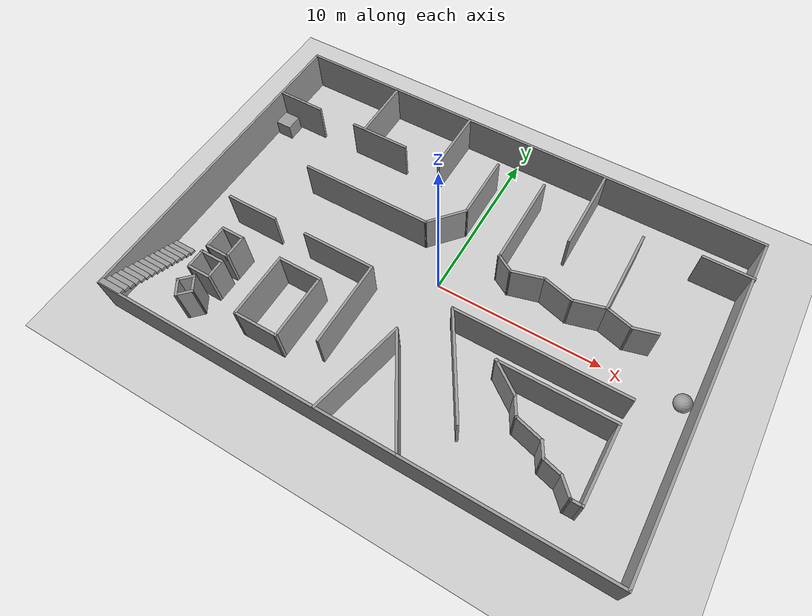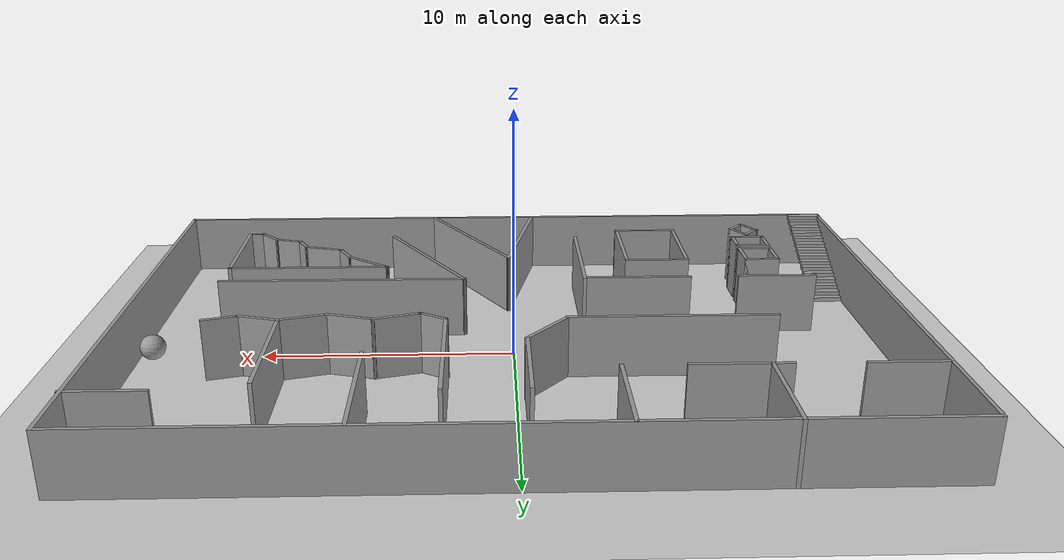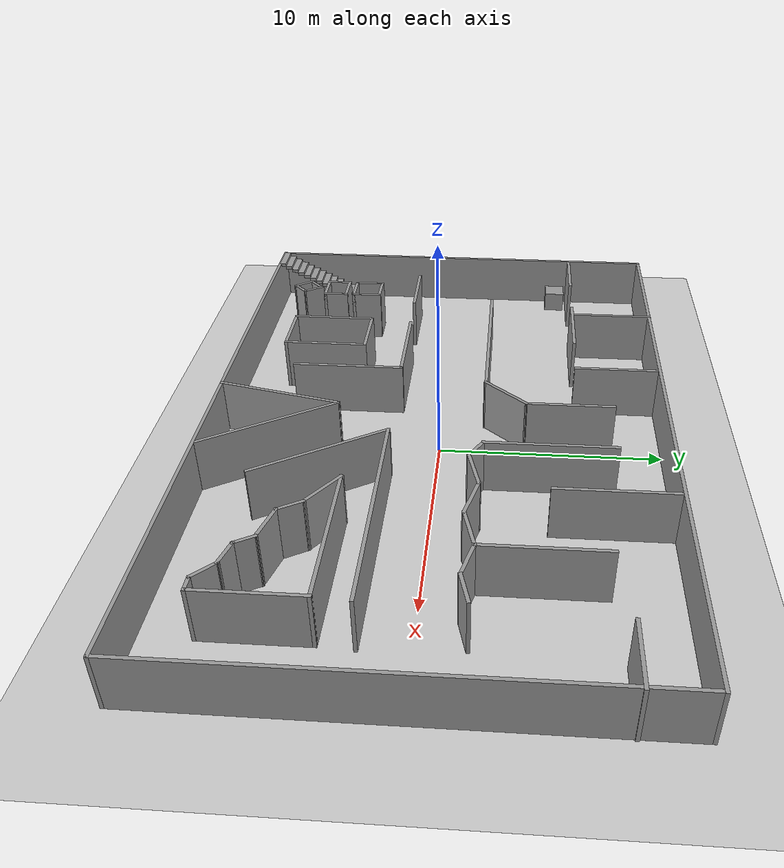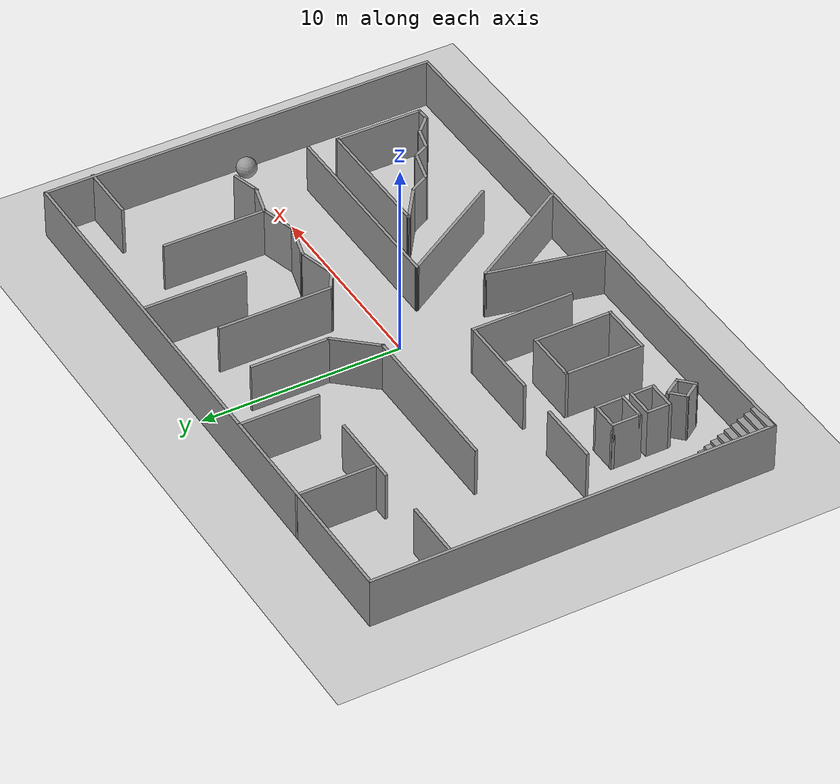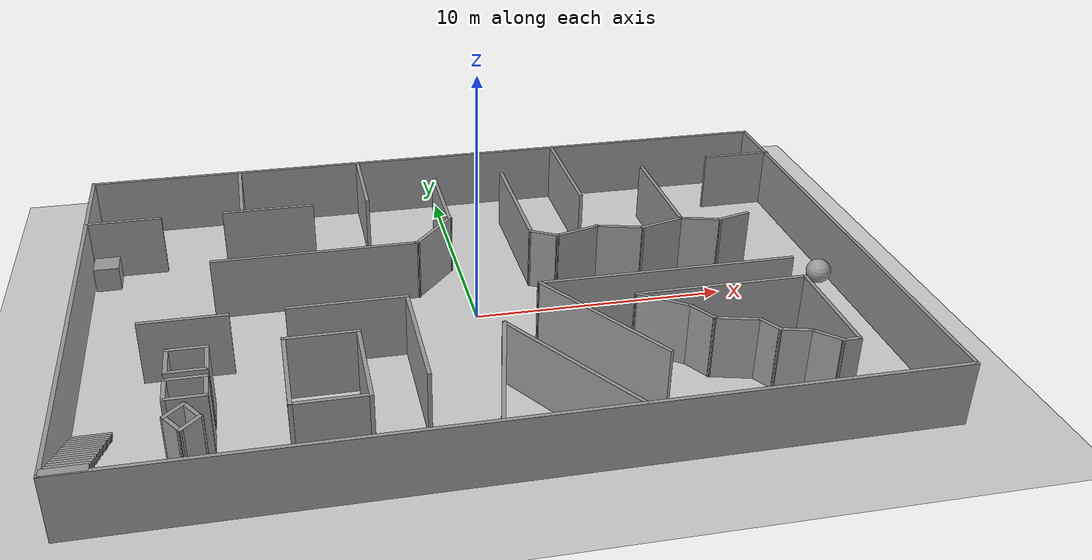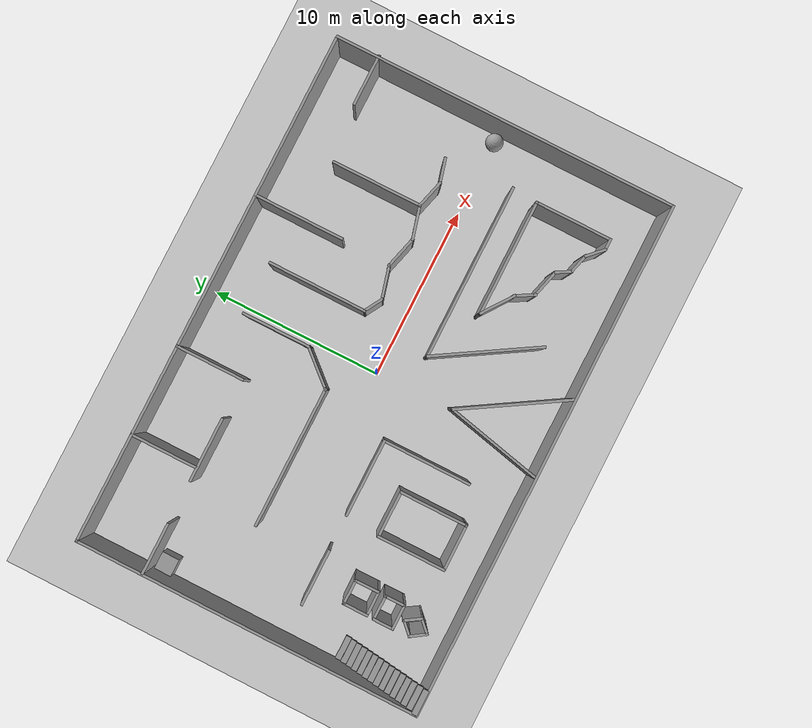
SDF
<sdf version="1.6">
 <world name="default">
  <light name="sun" type="directional">
   <pose>0 0 10 0 -0 0</pose>
   <diffuse>0.8 0.8 0.8 1</diffuse>
   <specular>0.2 0.2 0.2 1</specular>
   <attenuation>
    <range>1000</range>
    <constant>0.9</constant>
    <linear>0.01</linear>
    <quadratic>0.001</quadratic>
   </attenuation>
   <direction>-0.5 0.1 -0.9</direction>
  </light>
  <model name="ground_plane">
   <static>1</static>
   <link name="link">
    <collision name="collision">
     <geometry><plane><normal>0 0 1</normal><size>100 100</size></plane></geometry>
     <surface>
      <contact><collide_bitmask>65535</collide_bitmask></contact>
      <friction><ode><mu>100</mu><mu2>50</mu2></ode></friction>
     </surface>
    </collision>
    <visual name="visual">
     <cast_shadows>0</cast_shadows>
     <geometry><plane><normal>0 0 1</normal><size>100 100</size></plane></geometry>
     <material>
      <script><uri>file://media/materials/scripts/gazebo.material</uri><name>Gazebo/Grey</name></script>
     </material>
    </visual>
   </link>
  </model>
  <gravity>0 0 -9.8</gravity>
  <magnetic_field>6e-06 2.3e-05 -4.2e-05</magnetic_field>
  <atmosphere type="adiabatic"/>
  <physics name="default_physics" default="0" type="ode">
   <max_step_size>0.001</max_step_size>
   <real_time_factor>1</real_time_factor>
   <real_time_update_rate>1000</real_time_update_rate>
  </physics>
  <scene><ambient>0.4 0.4 0.4 1</ambient><background>0.7 0.7 0.7 1</background><shadows>1</shadows></scene>
  <audio><device>default</device></audio>
  <spherical_coordinates>
   <surface_model>EARTH_WGS84</surface_model>
   <latitude_deg>0</latitude_deg>
   <longitude_deg>0</longitude_deg>
   <elevation>0</elevation>
   <heading_deg>0</heading_deg>
  </spherical_coordinates>
  <model name="Untitled_0">
   <pose>0.028156 0.004264 0 0 -0 0</pose>
   <link name="Stairs_0">
    <visual name="Stairs_0_Visual_0">
     <pose>-14.3145 -5.2358 0.083333 0 -0 0</pose>
     <geometry><box><size>1.45112 0.330096 0.166667</size></box></geometry>
     <material>
      <script><uri>file://media/materials/scripts/gazebo.material</uri><name>Gazebo/Grey</name></script>
      <ambient>1 1 1 1</ambient>
     </material>
     <meta><layer>0</layer></meta>
    </visual>
    <collision name="Stairs_0_Collision_0">
     <geometry><box><size>1.45112 0.330096 0.166667</size></box></geometry>
     <pose>-14.3145 -5.2358 0.083333 0 -0 0</pose>
    </collision>
    <visual name="Stairs_0_Visual_1">
     <pose>-14.3145 -5.5659 0.25 0 -0 0</pose>
     <geometry><box><size>1.45112 0.330096 0.166667</size></box></geometry>
     <material>
      <script><uri>file://media/materials/scripts/gazebo.material</uri><name>Gazebo/Grey</name></script>
      <ambient>1 1 1 1</ambient>
     </material>
     <meta><layer>0</layer></meta>
    </visual>
    <collision name="Stairs_0_Collision_1">
     <geometry><box><size>1.45112 0.330096 0.166667</size></box></geometry>
     <pose>-14.3145 -5.5659 0.25 0 -0 0</pose>
    </collision>
    <visual name="Stairs_0_Visual_2">
     <pose>-14.3145 -5.89599 0.416667 0 -0 0</pose>
     <geometry><box><size>1.45112 0.330096 0.166667</size></box></geometry>
     <material>
      <script><uri>file://media/materials/scripts/gazebo.material</uri><name>Gazebo/Grey</name></script>
      <ambient>1 1 1 1</ambient>
     </material>
     <meta><layer>0</layer></meta>
    </visual>
    <collision name="Stairs_0_Collision_2">
     <geometry><box><size>1.45112 0.330096 0.166667</size></box></geometry>
     <pose>-14.3145 -5.89599 0.416667 0 -0 0</pose>
    </collision>
    <visual name="Stairs_0_Visual_3">
     <pose>-14.3145 -6.22609 0.583333 0 -0 0</pose>
     <geometry><box><size>1.45112 0.330096 0.166667</size></box></geometry>
     <material>
      <script><uri>file://media/materials/scripts/gazebo.material</uri><name>Gazebo/Grey</name></script>
      <ambient>1 1 1 1</ambient>
     </material>
     <meta><layer>0</layer></meta>
    </visual>
    <collision name="Stairs_0_Collision_3">
     <geometry><box><size>1.45112 0.330096 0.166667</size></box></geometry>
     <pose>-14.3145 -6.22609 0.583333 0 -0 0</pose>
    </collision>
    <visual name="Stairs_0_Visual_4">
     <pose>-14.3145 -6.55619 0.75 0 -0 0</pose>
     <geometry><box><size>1.45112 0.330096 0.166667</size></box></geometry>
     <material>
      <script><uri>file://media/materials/scripts/gazebo.material</uri><name>Gazebo/Grey</name></script>
      <ambient>1 1 1 1</ambient>
     </material>
     <meta><layer>0</layer></meta>
    </visual>
    <collision name="Stairs_0_Collision_4">
     <geometry><box><size>1.45112 0.330096 0.166667</size></box></geometry>
     <pose>-14.3145 -6.55619 0.75 0 -0 0</pose>
    </collision>
    <visual name="Stairs_0_Visual_5">
     <pose>-14.3145 -6.88628 0.916667 0 -0 0</pose>
     <geometry><box><size>1.45112 0.330096 0.166667</size></box></geometry>
     <material>
      <script><uri>file://media/materials/scripts/gazebo.material</uri><name>Gazebo/Grey</name></script>
      <ambient>1 1 1 1</ambient>
     </material>
     <meta><layer>0</layer></meta>
    </visual>
    <collision name="Stairs_0_Collision_5">
     <geometry><box><size>1.45112 0.330096 0.166667</size></box></geometry>
     <pose>-14.3145 -6.88628 0.916667 0 -0 0</pose>
    </collision>
    <visual name="Stairs_0_Visual_6">
     <pose>-14.3145 -7.21638 1.08333 0 -0 0</pose>
     <geometry><box><size>1.45112 0.330096 0.166667</size></box></geometry>
     <material>
      <script><uri>file://media/materials/scripts/gazebo.material</uri><name>Gazebo/Grey</name></script>
      <ambient>1 1 1 1</ambient>
     </material>
     <meta><layer>0</layer></meta>
    </visual>
    <collision name="Stairs_0_Collision_6">
     <geometry><box><size>1.45112 0.330096 0.166667</size></box></geometry>
     <pose>-14.3145 -7.21638 1.08333 0 -0 0</pose>
    </collision>
    <visual name="Stairs_0_Visual_7">
     <pose>-14.3145 -7.54648 1.25 0 -0 0</pose>
     <geometry><box><size>1.45112 0.330096 0.166667</size></box></geometry>
     <material>
      <script><uri>file://media/materials/scripts/gazebo.material</uri><name>Gazebo/Grey</name></script>
      <ambient>1 1 1 1</ambient>
     </material>
     <meta><layer>0</layer></meta>
    </visual>
    <collision name="Stairs_0_Collision_7">
     <geometry><box><size>1.45112 0.330096 0.166667</size></box></geometry>
     <pose>-14.3145 -7.54648 1.25 0 -0 0</pose>
    </collision>
    <visual name="Stairs_0_Visual_8">
     <pose>-14.3145 -7.87657 1.41667 0 -0 0</pose>
     <geometry><box><size>1.45112 0.330096 0.166667</size></box></geometry>
     <material>
      <script><uri>file://media/materials/scripts/gazebo.material</uri><name>Gazebo/Grey</name></script>
      <ambient>1 1 1 1</ambient>
     </material>
     <meta><layer>0</layer></meta>
    </visual>
    <collision name="Stairs_0_Collision_8">
     <geometry><box><size>1.45112 0.330096 0.166667</size></box></geometry>
     <pose>-14.3145 -7.87657 1.41667 0 -0 0</pose>
    </collision>
    <visual name="Stairs_0_Visual_9">
     <pose>-14.3145 -8.20667 1.58333 0 -0 0</pose>
     <geometry><box><size>1.45112 0.330096 0.166667</size></box></geometry>
     <material>
      <script><uri>file://media/materials/scripts/gazebo.material</uri><name>Gazebo/Grey</name></script>
      <ambient>1 1 1 1</ambient>
     </material>
     <meta><layer>0</layer></meta>
    </visual>
    <collision name="Stairs_0_Collision_9">
     <geometry><box><size>1.45112 0.330096 0.166667</size></box></geometry>
     <pose>-14.3145 -8.20667 1.58333 0 -0 0</pose>
    </collision>
    <visual name="Stairs_0_Visual_10">
     <pose>-14.3145 -8.53676 1.75 0 -0 0</pose>
     <geometry><box><size>1.45112 0.330096 0.166667</size></box></geometry>
     <material>
      <script><uri>file://media/materials/scripts/gazebo.material</uri><name>Gazebo/Grey</name></script>
      <ambient>1 1 1 1</ambient>
     </material>
     <meta><layer>0</layer></meta>
    </visual>
    <collision name="Stairs_0_Collision_10">
     <geometry><box><size>1.45112 0.330096 0.166667</size></box></geometry>
     <pose>-14.3145 -8.53676 1.75 0 -0 0</pose>
    </collision>
    <visual name="Stairs_0_Visual_11">
     <pose>-14.3145 -8.86686 1.91667 0 -0 0</pose>
     <geometry><box><size>1.45112 0.330096 0.166667</size></box></geometry>
     <material>
      <script><uri>file://media/materials/scripts/gazebo.material</uri><name>Gazebo/Grey</name></script>
      <ambient>1 1 1 1</ambient>
     </material>
     <meta><layer>0</layer></meta>
    </visual>
    <collision name="Stairs_0_Collision_11">
     <geometry><box><size>1.45112 0.330096 0.166667</size></box></geometry>
     <pose>-14.3145 -8.86686 1.91667 0 -0 0</pose>
    </collision>
    <visual name="Stairs_0_Visual_12">
     <pose>-14.3145 -9.19696 2.08333 0 -0 0</pose>
     <geometry><box><size>1.45112 0.330096 0.166667</size></box></geometry>
     <material>
      <script><uri>file://media/materials/scripts/gazebo.material</uri><name>Gazebo/Grey</name></script>
      <ambient>1 1 1 1</ambient>
     </material>
     <meta><layer>0</layer></meta>
    </visual>
    <collision name="Stairs_0_Collision_12">
     <geometry><box><size>1.45112 0.330096 0.166667</size></box></geometry>
     <pose>-14.3145 -9.19696 2.08333 0 -0 0</pose>
    </collision>
    <visual name="Stairs_0_Visual_13">
     <pose>-14.3145 -9.52705 2.25 0 -0 0</pose>
     <geometry><box><size>1.45112 0.330096 0.166667</size></box></geometry>
     <material>
      <script><uri>file://media/materials/scripts/gazebo.material</uri><name>Gazebo/Grey</name></script>
      <ambient>1 1 1 1</ambient>
     </material>
     <meta><layer>0</layer></meta>
    </visual>
    <collision name="Stairs_0_Collision_13">
     <geometry><box><size>1.45112 0.330096 0.166667</size></box></geometry>
     <pose>-14.3145 -9.52705 2.25 0 -0 0</pose>
    </collision>
    <visual name="Stairs_0_Visual_14">
     <pose>-14.3145 -9.85715 2.41667 0 -0 0</pose>
     <geometry><box><size>1.45112 0.330096 0.166667</size></box></geometry>
     <material>
      <script><uri>file://media/materials/scripts/gazebo.material</uri><name>Gazebo/Grey</name></script>
      <ambient>1 1 1 1</ambient>
     </material>
     <meta><layer>0</layer></meta>
    </visual>
    <collision name="Stairs_0_Collision_14">
     <geometry><box><size>1.45112 0.330096 0.166667</size></box></geometry>
     <pose>-14.3145 -9.85715 2.41667 0 -0 0</pose>
    </collision>
   </link>
   <link name="Wall_101">
    <collision name="Wall_101_Collision">
     <geometry><box><size>5.25 0.15 2.5</size></box></geometry>
     <pose>0 0 1.25 0 -0 0</pose>
    </collision>
    <visual name="Wall_101_Visual">
     <pose>0 0 1.25 0 -0 0</pose>
     <geometry><box><size>5.25 0.15 2.5</size></box></geometry>
     <material>
      <script><uri>file://media/materials/scripts/gazebo.material</uri><name>Gazebo/Grey</name></script>
      <ambient>1 1 1 1</ambient>
     </material>
     <meta><layer>0</layer></meta>
    </visual>
    <pose>8.911 4.53478 0 0 -0 1.5708</pose>
   </link>
   <link name="Wall_105">
    <collision name="Wall_105_Collision">
     <geometry><box><size>3 0.15 2.5</size></box></geometry>
     <pose>0 0 1.25 0 -0 0</pose>
    </collision>
    <visual name="Wall_105_Visual">
     <pose>0 0 1.25 0 -0 0</pose>
     <geometry><box><size>3 0.15 2.5</size></box></geometry>
     <material>
      <script><uri>file://media/materials/scripts/gazebo.material</uri><name>Gazebo/Grey</name></script>
      <ambient>1 1 1 1</ambient>
     </material>
     <meta><layer>0</layer></meta>
    </visual>
    <pose>13.6032 7.54437 0 0 -0 3.14159</pose>
   </link>
   <link name="Wall_11">
    <collision name="Wall_11_Collision">
     <geometry><box><size>20.15 0.15 2.5</size></box></geometry>
     <pose>0 0 1.25 0 -0 0</pose>
    </collision>
    <visual name="Wall_11_Visual">
     <pose>0 0 1.25 0 -0 0</pose>
     <geometry><box><size>20.15 0.15 2.5</size></box></geometry>
     <material>
      <script><uri>file://media/materials/scripts/gazebo.material</uri><name>Gazebo/Grey</name></script>
      <ambient>1 1 1 1</ambient>
     </material>
     <meta><layer>0</layer></meta>
    </visual>
    <pose>14.9718 -0.004264 0 0 -0 -1.5708</pose>
   </link>
   <link name="Wall_13">
    <collision name="Wall_13_Collision">
     <geometry><box><size>5.15 0.15 2.5</size></box></geometry>
     <pose>0 0 1.25 0 -0 0</pose>
    </collision>
    <visual name="Wall_13_Visual">
     <pose>0 0 1.25 0 -0 0</pose>
     <geometry><box><size>5.15 0.15 2.5</size></box></geometry>
     <material>
      <script><uri>file://media/materials/scripts/gazebo.material</uri><name>Gazebo/Grey</name></script>
      <ambient>1 1 1 1</ambient>
     </material>
     <meta><layer>0</layer></meta>
    </visual>
    <pose>-3.02816 -4.50426 0 0 -0 -1.5708</pose>
   </link>
   <link name="Wall_15">
    <collision name="Wall_15_Collision">
     <geometry><box><size>4.5 0.15 2.5</size></box></geometry>
     <pose>0 0 1.25 0 -0 0</pose>
    </collision>
    <visual name="Wall_15_Visual">
     <pose>0 0 1.25 0 -0 0</pose>
     <geometry><box><size>4.5 0.15 2.5</size></box></geometry>
     <material>
      <script><uri>file://media/materials/scripts/gazebo.material</uri><name>Gazebo/Grey</name></script>
      <ambient>1 1 1 1</ambient>
     </material>
     <meta><layer>0</layer></meta>
    </visual>
    <pose>-5.20316 -2.00426 0 0 -0 3.14159</pose>
   </link>
   <link name="Wall_17">
    <collision name="Wall_17_Collision">
     <geometry><box><size>3.25 0.15 2.5</size></box></geometry>
     <pose>0 0 1.25 0 -0 0</pose>
    </collision>
    <visual name="Wall_17_Visual">
     <pose>0 0 1.25 0 -0 0</pose>
     <geometry><box><size>3.25 0.15 2.5</size></box></geometry>
     <material>
      <script><uri>file://media/materials/scripts/gazebo.material</uri><name>Gazebo/Grey</name></script>
      <ambient>1 1 1 1</ambient>
     </material>
     <meta><layer>0</layer></meta>
    </visual>
    <pose>-11.0493 -2.03491 0 0 -0 3.14159</pose>
   </link>
   <link name="Wall_20">
    <collision name="Wall_20_Collision">
     <geometry><box><size>4 0.15 2.5</size></box></geometry>
     <pose>0 0 1.25 0 -0 0</pose>
    </collision>
    <visual name="Wall_20_Visual">
     <pose>0 0 1.25 0 -0 0</pose>
     <geometry><box><size>4 0.15 2.5</size></box></geometry>
     <material>
      <script><uri>file://media/materials/scripts/gazebo.material</uri><name>Gazebo/Grey</name></script>
      <ambient>1 1 1 1</ambient>
     </material>
     <meta><layer>0</layer></meta>
    </visual>
    <pose>-5.02816 -5.92927 0 0 -0 -1.5708</pose>
   </link>
   <link name="Wall_22">
    <collision name="Wall_22_Collision">
     <geometry><box><size>2.75 0.15 2.5</size></box></geometry>
     <pose>0 0 1.25 0 -0 0</pose>
    </collision>
    <visual name="Wall_22_Visual">
     <pose>0 0 1.25 0 -0 0</pose>
     <geometry><box><size>2.75 0.15 2.5</size></box></geometry>
     <material>
      <script><uri>file://media/materials/scripts/gazebo.material</uri><name>Gazebo/Grey</name></script>
      <ambient>1 1 1 1</ambient>
     </material>
     <meta><layer>0</layer></meta>
    </visual>
    <pose>-6.32816 -4.00426 0 0 -0 3.14159</pose>
   </link>
   <link name="Wall_23">
    <collision name="Wall_23_Collision">
     <geometry><box><size>4 0.15 2.5</size></box></geometry>
     <pose>0 0 1.25 0 -0 0</pose>
    </collision>
    <visual name="Wall_23_Visual">
     <pose>0 0 1.25 0 -0 0</pose>
     <geometry><box><size>4 0.15 2.5</size></box></geometry>
     <material>
      <script><uri>file://media/materials/scripts/gazebo.material</uri><name>Gazebo/Grey</name></script>
      <ambient>1 1 1 1</ambient>
     </material>
     <meta><layer>0</layer></meta>
    </visual>
    <pose>-7.62816 -5.92927 0 0 -0 -1.5708</pose>
   </link>
   <link name="Wall_24">
    <collision name="Wall_24_Collision">
     <geometry><box><size>2.75 0.15 2.5</size></box></geometry>
     <pose>0 0 1.25 0 -0 0</pose>
    </collision>
    <visual name="Wall_24_Visual">
     <pose>0 0 1.25 0 -0 0</pose>
     <geometry><box><size>2.75 0.15 2.5</size></box></geometry>
     <material>
      <script><uri>file://media/materials/scripts/gazebo.material</uri><name>Gazebo/Grey</name></script>
      <ambient>1 1 1 1</ambient>
     </material>
     <meta><layer>0</layer></meta>
    </visual>
    <pose>-6.32816 -7.85426 0 0 -0 0</pose>
   </link>
   <link name="Wall_27">
    <collision name="Wall_27_Collision">
     <geometry><box><size>1.5 0.15 2.5</size></box></geometry>
     <pose>0 0 1.25 0 -0 0</pose>
    </collision>
    <visual name="Wall_27_Visual">
     <pose>0 0 1.25 0 -0 0</pose>
     <geometry><box><size>1.5 0.15 2.5</size></box></geometry>
     <material>
      <script><uri>file://media/materials/scripts/gazebo.material</uri><name>Gazebo/Grey</name></script>
      <ambient>1 1 1 1</ambient>
     </material>
     <meta><layer>0</layer></meta>
    </visual>
    <pose>-10.2137 -4.65171 0 0 -0 -1.5708</pose>
   </link>
   <link name="Wall_31">
    <collision name="Wall_31_Collision">
     <geometry><box><size>1.5 0.15 2.5</size></box></geometry>
     <pose>0 0 1.25 0 -0 0</pose>
    </collision>
    <visual name="Wall_31_Visual">
     <pose>0 0 1.25 0 -0 0</pose>
     <geometry><box><size>1.5 0.15 2.5</size></box></geometry>
     <material>
      <script><uri>file://media/materials/scripts/gazebo.material</uri><name>Gazebo/Grey</name></script>
      <ambient>1 1 1 1</ambient>
     </material>
     <meta><layer>0</layer></meta>
    </visual>
    <pose>-10.8887 -3.97671 0 0 -0 3.14159</pose>
   </link>
   <link name="Wall_32">
    <collision name="Wall_32_Collision">
     <geometry><box><size>1.5 0.15 2.5</size></box></geometry>
     <pose>0 0 1.25 0 -0 0</pose>
    </collision>
    <visual name="Wall_32_Visual">
     <pose>0 0 1.25 0 -0 0</pose>
     <geometry><box><size>1.5 0.15 2.5</size></box></geometry>
     <material>
      <script><uri>file://media/materials/scripts/gazebo.material</uri><name>Gazebo/Grey</name></script>
      <ambient>1 1 1 1</ambient>
     </material>
     <meta><layer>0</layer></meta>
    </visual>
    <pose>-11.5637 -4.65171 0 0 -0 -1.5708</pose>
   </link>
   <link name="Wall_33">
    <collision name="Wall_33_Collision">
     <geometry><box><size>1.5 0.15 2.5</size></box></geometry>
     <pose>0 0 1.25 0 -0 0</pose>
    </collision>
    <visual name="Wall_33_Visual">
     <pose>0 0 1.25 0 -0 0</pose>
     <geometry><box><size>1.5 0.15 2.5</size></box></geometry>
     <material>
      <script><uri>file://media/materials/scripts/gazebo.material</uri><name>Gazebo/Grey</name></script>
      <ambient>1 1 1 1</ambient>
     </material>
     <meta><layer>0</layer></meta>
    </visual>
    <pose>-10.8887 -5.32671 0 0 -0 0</pose>
   </link>
   <link name="Wall_35">
    <collision name="Wall_35_Collision">
     <geometry><box><size>1.5 0.15 2.5</size></box></geometry>
     <pose>0 0 1.25 0 -0 0</pose>
    </collision>
    <visual name="Wall_35_Visual">
     <pose>0 0 1.25 0 -0 0</pose>
     <geometry><box><size>1.5 0.15 2.5</size></box></geometry>
     <material>
      <script><uri>file://media/materials/scripts/gazebo.material</uri><name>Gazebo/Grey</name></script>
      <ambient>1 1 1 1</ambient>
     </material>
     <meta><layer>0</layer></meta>
    </visual>
    <pose>-10.9034 -5.74198 0 0 -0 0</pose>
   </link>
   <link name="Wall_36">
    <collision name="Wall_36_Collision">
     <geometry><box><size>1.25 0.15 2.5</size></box></geometry>
     <pose>0 0 1.25 0 -0 0</pose>
    </collision>
    <visual name="Wall_36_Visual">
     <pose>0 0 1.25 0 -0 0</pose>
     <geometry><box><size>1.25 0.15 2.5</size></box></geometry>
     <material>
      <script><uri>file://media/materials/scripts/gazebo.material</uri><name>Gazebo/Grey</name></script>
      <ambient>1 1 1 1</ambient>
     </material>
     <meta><layer>0</layer></meta>
    </visual>
    <pose>-10.2284 -6.29198 0 0 -0 -1.5708</pose>
   </link>
   <link name="Wall_37">
    <collision name="Wall_37_Collision">
     <geometry><box><size>1.5 0.15 2.5</size></box></geometry>
     <pose>0 0 1.25 0 -0 0</pose>
    </collision>
    <visual name="Wall_37_Visual">
     <pose>0 0 1.25 0 -0 0</pose>
     <geometry><box><size>1.5 0.15 2.5</size></box></geometry>
     <material>
      <script><uri>file://media/materials/scripts/gazebo.material</uri><name>Gazebo/Grey</name></script>
      <ambient>1 1 1 1</ambient>
     </material>
     <meta><layer>0</layer></meta>
    </visual>
    <pose>-10.9034 -6.84198 0 0 -0 3.14159</pose>
   </link>
   <link name="Wall_38">
    <collision name="Wall_38_Collision">
     <geometry><box><size>1.25 0.15 2.5</size></box></geometry>
     <pose>0 0 1.25 0 -0 0</pose>
    </collision>
    <visual name="Wall_38_Visual">
     <pose>0 0 1.25 0 -0 0</pose>
     <geometry><box><size>1.25 0.15 2.5</size></box></geometry>
     <material>
      <script><uri>file://media/materials/scripts/gazebo.material</uri><name>Gazebo/Grey</name></script>
      <ambient>1 1 1 1</ambient>
     </material>
     <meta><layer>0</layer></meta>
    </visual>
    <pose>-11.5784 -6.29198 0 0 -0 1.5708</pose>
   </link>
   <link name="Wall_40">
    <collision name="Wall_40_Collision">
     <geometry><box><size>1 0.15 2.5</size></box></geometry>
     <pose>0 0 1.25 0 -0 0</pose>
    </collision>
    <visual name="Wall_40_Visual">
     <pose>0 0 1.25 0 -0 0</pose>
     <geometry><box><size>1 0.15 2.5</size></box></geometry>
     <material>
      <script><uri>file://media/materials/scripts/gazebo.material</uri><name>Gazebo/Grey</name></script>
      <ambient>1 1 1 1</ambient>
     </material>
     <meta><layer>0</layer></meta>
    </visual>
    <pose>-11.2238 -7.49541 0 0 -0 -2.35619</pose>
   </link>
   <link name="Wall_41">
    <collision name="Wall_41_Collision">
     <geometry><box><size>1.07571 0.15 2.5</size></box></geometry>
     <pose>0 0 1.25 0 -0 0</pose>
    </collision>
    <visual name="Wall_41_Visual">
     <pose>0 0 1.25 0 -0 0</pose>
     <geometry><box><size>1.07571 0.15 2.5</size></box></geometry>
     <material>
      <script><uri>file://media/materials/scripts/gazebo.material</uri><name>Gazebo/Grey</name></script>
      <ambient>1 1 1 1</ambient>
     </material>
     <meta><layer>0</layer></meta>
    </visual>
    <pose>-11.2652 -8.17946 0 0 -0 -0.97662</pose>
   </link>
   <link name="Wall_44">
    <collision name="Wall_44_Collision">
     <geometry><box><size>1 0.15 2.5</size></box></geometry>
     <pose>0 0 1.25 0 -0 0</pose>
    </collision>
    <visual name="Wall_44_Visual">
     <pose>0 0 1.25 0 -0 0</pose>
     <geometry><box><size>1 0.15 2.5</size></box></geometry>
     <material>
      <script><uri>file://media/materials/scripts/gazebo.material</uri><name>Gazebo/Grey</name></script>
      <ambient>1 1 1 1</ambient>
     </material>
     <meta><layer>0</layer></meta>
    </visual>
    <pose>-10.7056 -8.26246 0 0 -0 0.785398</pose>
   </link>
   <link name="Wall_45">
    <collision name="Wall_45_Collision">
     <geometry><box><size>1.10847 0.15 2.5</size></box></geometry>
     <pose>0 0 1.25 0 -0 0</pose>
    </collision>
    <visual name="Wall_45_Visual">
     <pose>0 0 1.25 0 -0 0</pose>
     <geometry><box><size>1.10847 0.15 2.5</size></box></geometry>
     <material>
      <script><uri>file://media/materials/scripts/gazebo.material</uri><name>Gazebo/Grey</name></script>
      <ambient>1 1 1 1</ambient>
     </material>
     <meta><layer>0</layer></meta>
    </visual>
    <pose>-10.6642 -7.5588 0 0 -0 2.14206</pose>
   </link>
   <link name="Wall_5">
    <collision name="Wall_5_Collision">
     <geometry><box><size>30.15 0.15 2.5</size></box></geometry>
     <pose>0 0 1.25 0 -0 0</pose>
    </collision>
    <visual name="Wall_5_Visual">
     <pose>0 0 1.25 0 -0 0</pose>
     <geometry><box><size>30.15 0.15 2.5</size></box></geometry>
     <material>
      <script><uri>file://media/materials/scripts/gazebo.material</uri><name>Gazebo/Grey</name></script>
      <ambient>1 1 1 1</ambient>
     </material>
     <meta><layer>0</layer></meta>
    </visual>
    <pose>-0.028156 -10.0043 0 0 -0 0</pose>
   </link>
   <link name="Wall_51">
    <collision name="Wall_51_Collision">
     <geometry><box><size>3.75 0.15 2.5</size></box></geometry>
     <pose>0 0 1.25 0 -0 0</pose>
    </collision>
    <visual name="Wall_51_Visual">
     <pose>0 0 1.25 0 -0 0</pose>
     <geometry><box><size>3.75 0.15 2.5</size></box></geometry>
     <material>
      <script><uri>file://media/materials/scripts/gazebo.material</uri><name>Gazebo/Grey</name></script>
      <ambient>1 1 1 1</ambient>
     </material>
     <meta><layer>0</layer></meta>
    </visual>
    <pose>-7.7019 6.12765 0 0 -0 3.14159</pose>
   </link>
   <link name="Wall_53">
    <collision name="Wall_53_Collision">
     <geometry><box><size>3 0.15 2.5</size></box></geometry>
     <pose>0 0 1.25 0 -0 0</pose>
    </collision>
    <visual name="Wall_53_Visual">
     <pose>0 0 1.25 0 -0 0</pose>
     <geometry><box><size>3 0.15 2.5</size></box></geometry>
     <material>
      <script><uri>file://media/materials/scripts/gazebo.material</uri><name>Gazebo/Grey</name></script>
      <ambient>1 1 1 1</ambient>
     </material>
     <meta><layer>0</layer></meta>
    </visual>
    <pose>-13.5393 6.13431 0 0 -0 0</pose>
   </link>
   <link name="Wall_57">
    <collision name="Wall_57_Collision">
     <geometry><box><size>4 0.15 2.5</size></box></geometry>
     <pose>0 0 1.25 0 -0 0</pose>
    </collision>
    <visual name="Wall_57_Visual">
     <pose>0 0 1.25 0 -0 0</pose>
     <geometry><box><size>4 0.15 2.5</size></box></geometry>
     <material>
      <script><uri>file://media/materials/scripts/gazebo.material</uri><name>Gazebo/Grey</name></script>
      <ambient>1 1 1 1</ambient>
     </material>
     <meta><layer>0</layer></meta>
    </visual>
    <pose>-8.77976 8.07926 0 0 -0 1.5708</pose>
   </link>
   <link name="Wall_59">
    <collision name="Wall_59_Collision">
     <geometry><box><size>4 0.15 2.5</size></box></geometry>
     <pose>0 0 1.25 0 -0 0</pose>
    </collision>
    <visual name="Wall_59_Visual">
     <pose>0 0 1.25 0 -0 0</pose>
     <geometry><box><size>4 0.15 2.5</size></box></geometry>
     <material>
      <script><uri>file://media/materials/scripts/gazebo.material</uri><name>Gazebo/Grey</name></script>
      <ambient>1 1 1 1</ambient>
     </material>
     <meta><layer>0</layer></meta>
    </visual>
    <pose>-3.55282 8.05931 0 0 -0 1.5708</pose>
   </link>
   <link name="Wall_61">
    <collision name="Wall_61_Collision">
     <geometry><box><size>8.15 0.15 2.5</size></box></geometry>
     <pose>0 0 1.25 0 -0 0</pose>
    </collision>
    <visual name="Wall_61_Visual">
     <pose>0 0 1.25 0 -0 0</pose>
     <geometry><box><size>8.15 0.15 2.5</size></box></geometry>
     <material>
      <script><uri>file://media/materials/scripts/gazebo.material</uri><name>Gazebo/Grey</name></script>
      <ambient>1 1 1 1</ambient>
     </material>
     <meta><layer>0</layer></meta>
    </visual>
    <pose>-6.02816 1.99574 0 0 -0 3.14159</pose>
   </link>
   <link name="Wall_64">
    <collision name="Wall_64_Collision">
     <geometry><box><size>4 0.15 2.5</size></box></geometry>
     <pose>0 0 1.25 0 -0 0</pose>
    </collision>
    <visual name="Wall_64_Visual">
     <pose>0 0 1.25 0 -0 0</pose>
     <geometry><box><size>4 0.15 2.5</size></box></geometry>
     <material>
      <script><uri>file://media/materials/scripts/gazebo.material</uri><name>Gazebo/Grey</name></script>
      <ambient>1 1 1 1</ambient>
     </material>
     <meta><layer>0</layer></meta>
    </visual>
    <pose>-0.422418 5.75345 0 0 -0 -1.5708</pose>
   </link>
   <link name="Wall_65">
    <collision name="Wall_65_Collision">
     <geometry><box><size>2.58664 0.15 2.5</size></box></geometry>
     <pose>0 0 1.25 0 -0 0</pose>
    </collision>
    <visual name="Wall_65_Visual">
     <pose>0 0 1.25 0 -0 0</pose>
     <geometry><box><size>2.58664 0.15 2.5</size></box></geometry>
     <material>
      <script><uri>file://media/materials/scripts/gazebo.material</uri><name>Gazebo/Grey</name></script>
      <ambient>1 1 1 1</ambient>
     </material>
     <meta><layer>0</layer></meta>
    </visual>
    <pose>-1.22529 2.91209 0 0 -0 -2.29028</pose>
   </link>
   <link name="Wall_68">
    <collision name="Wall_68_Collision">
     <geometry><box><size>6.35482 0.15 2.5</size></box></geometry>
     <pose>0 0 1.25 0 -0 0</pose>
    </collision>
    <visual name="Wall_68_Visual">
     <pose>0 0 1.25 0 -0 0</pose>
     <geometry><box><size>6.35482 0.15 2.5</size></box></geometry>
     <material>
      <script><uri>file://media/materials/scripts/gazebo.material</uri><name>Gazebo/Grey</name></script>
      <ambient>1 1 1 1</ambient>
     </material>
     <meta><layer>0</layer></meta>
    </visual>
    <pose>3.59331 -4.64922 0 0 -0 -1.02084</pose>
   </link>
   <link name="Wall_7">
    <collision name="Wall_7_Collision">
     <geometry><box><size>30.15 0.15 2.5</size></box></geometry>
     <pose>0 0 1.25 0 -0 0</pose>
    </collision>
    <visual name="Wall_7_Visual">
     <pose>0 0 1.25 0 -0 0</pose>
     <geometry><box><size>30.15 0.15 2.5</size></box></geometry>
     <material>
      <script><uri>file://media/materials/scripts/gazebo.material</uri><name>Gazebo/Grey</name></script>
      <ambient>1 1 1 1</ambient>
     </material>
     <meta><layer>0</layer></meta>
    </visual>
    <pose>-0.028156 9.99574 0 0 -0 0</pose>
   </link>
   <link name="Wall_70">
    <collision name="Wall_70_Collision">
     <geometry><box><size>10.15 0.15 2.5</size></box></geometry>
     <pose>0 0 1.25 0 -0 0</pose>
    </collision>
    <visual name="Wall_70_Visual">
     <pose>0 0 1.25 0 -0 0</pose>
     <geometry><box><size>10.15 0.15 2.5</size></box></geometry>
     <material>
      <script><uri>file://media/materials/scripts/gazebo.material</uri><name>Gazebo/Grey</name></script>
      <ambient>1 1 1 1</ambient>
     </material>
     <meta><layer>0</layer></meta>
    </visual>
    <pose>6.97184 -2.00426 0 0 -0 0</pose>
   </link>
   <link name="Wall_72">
    <collision name="Wall_72_Collision">
     <geometry><box><size>6.75 0.15 2.5</size></box></geometry>
     <pose>0 0 1.25 0 -0 0</pose>
    </collision>
    <visual name="Wall_72_Visual">
     <pose>0 0 1.25 0 -0 0</pose>
     <geometry><box><size>6.75 0.15 2.5</size></box></geometry>
     <material>
      <script><uri>file://media/materials/scripts/gazebo.material</uri><name>Gazebo/Grey</name></script>
      <ambient>1 1 1 1</ambient>
     </material>
     <meta><layer>0</layer></meta>
    </visual>
    <pose>8.57115 -3.46947 0 0 -0 0</pose>
   </link>
   <link name="Wall_73">
    <collision name="Wall_73_Collision">
     <geometry><box><size>4.5 0.15 2.5</size></box></geometry>
     <pose>0 0 1.25 0 -0 0</pose>
    </collision>
    <visual name="Wall_73_Visual">
     <pose>0 0 1.25 0 -0 0</pose>
     <geometry><box><size>4.5 0.15 2.5</size></box></geometry>
     <material>
      <script><uri>file://media/materials/scripts/gazebo.material</uri><name>Gazebo/Grey</name></script>
      <ambient>1 1 1 1</ambient>
     </material>
     <meta><layer>0</layer></meta>
    </visual>
    <pose>11.8711 -5.64447 0 0 -0 -1.5708</pose>
   </link>
   <link name="Wall_76">
    <collision name="Wall_76_Collision">
     <geometry><box><size>0.75 0.15 2.5</size></box></geometry>
     <pose>0 0 1.25 0 -0 0</pose>
    </collision>
    <visual name="Wall_76_Visual">
     <pose>0 0 1.25 0 -0 0</pose>
     <geometry><box><size>0.75 0.15 2.5</size></box></geometry>
     <material>
      <script><uri>file://media/materials/scripts/gazebo.material</uri><name>Gazebo/Grey</name></script>
      <ambient>1 1 1 1</ambient>
     </material>
     <meta><layer>0</layer></meta>
    </visual>
    <pose>11.5711 -7.81947 0 0 -0 3.14159</pose>
   </link>
   <link name="Wall_77">
    <collision name="Wall_77_Collision">
     <geometry><box><size>1.25 0.15 2.5</size></box></geometry>
     <pose>0 0 1.25 0 -0 0</pose>
    </collision>
    <visual name="Wall_77_Visual">
     <pose>0 0 1.25 0 -0 0</pose>
     <geometry><box><size>1.25 0.15 2.5</size></box></geometry>
     <material>
      <script><uri>file://media/materials/scripts/gazebo.material</uri><name>Gazebo/Grey</name></script>
      <ambient>1 1 1 1</ambient>
     </material>
     <meta><layer>0</layer></meta>
    </visual>
    <pose>10.8822 -7.43056 0 0 -0 2.35619</pose>
   </link>
   <link name="Wall_78">
    <collision name="Wall_78_Collision">
     <geometry><box><size>1.25 0.15 2.5</size></box></geometry>
     <pose>0 0 1.25 0 -0 0</pose>
    </collision>
    <visual name="Wall_78_Visual">
     <pose>0 0 1.25 0 -0 0</pose>
     <geometry><box><size>1.25 0.15 2.5</size></box></geometry>
     <material>
      <script><uri>file://media/materials/scripts/gazebo.material</uri><name>Gazebo/Grey</name></script>
      <ambient>1 1 1 1</ambient>
     </material>
     <meta><layer>0</layer></meta>
    </visual>
    <pose>9.96207 -6.8993 0 0 -0 2.87979</pose>
   </link>
   <link name="Wall_79">
    <collision name="Wall_79_Collision">
     <geometry><box><size>1 0.15 2.5</size></box></geometry>
     <pose>0 0 1.25 0 -0 0</pose>
    </collision>
    <visual name="Wall_79_Visual">
     <pose>0 0 1.25 0 -0 0</pose>
     <geometry><box><size>1 0.15 2.5</size></box></geometry>
     <material>
      <script><uri>file://media/materials/scripts/gazebo.material</uri><name>Gazebo/Grey</name></script>
      <ambient>1 1 1 1</ambient>
     </material>
     <meta><layer>0</layer></meta>
    </visual>
    <pose>9.21831 -6.38889 0 0 -0 2.0944</pose>
   </link>
   <link name="Wall_80">
    <collision name="Wall_80_Collision">
     <geometry><box><size>1.75 0.15 2.5</size></box></geometry>
     <pose>0 0 1.25 0 -0 0</pose>
    </collision>
    <visual name="Wall_80_Visual">
     <pose>0 0 1.25 0 -0 0</pose>
     <geometry><box><size>1.75 0.15 2.5</size></box></geometry>
     <material>
      <script><uri>file://media/materials/scripts/gazebo.material</uri><name>Gazebo/Grey</name></script>
      <ambient>1 1 1 1</ambient>
     </material>
     <meta><layer>0</layer></meta>
    </visual>
    <pose>8.23307 -5.81377 0 0 -0 2.87979</pose>
   </link>
   <link name="Wall_81">
    <collision name="Wall_81_Collision">
     <geometry><box><size>1.25 0.15 2.5</size></box></geometry>
     <pose>0 0 1.25 0 -0 0</pose>
    </collision>
    <visual name="Wall_81_Visual">
     <pose>0 0 1.25 0 -0 0</pose>
     <geometry><box><size>1.25 0.15 2.5</size></box></geometry>
     <material>
      <script><uri>file://media/materials/scripts/gazebo.material</uri><name>Gazebo/Grey</name></script>
      <ambient>1 1 1 1</ambient>
     </material>
     <meta><layer>0</layer></meta>
    </visual>
    <pose>7.18533 -5.1304 0 0 -0 2.0944</pose>
   </link>
   <link name="Wall_84">
    <collision name="Wall_84_Collision">
     <geometry><box><size>2.17244 0.15 2.5</size></box></geometry>
     <pose>0 0 1.25 0 -0 0</pose>
    </collision>
    <visual name="Wall_84_Visual">
     <pose>0 0 1.25 0 -0 0</pose>
     <geometry><box><size>2.17244 0.15 2.5</size></box></geometry>
     <material>
      <script><uri>file://media/materials/scripts/gazebo.material</uri><name>Gazebo/Grey</name></script>
      <ambient>1 1 1 1</ambient>
     </material>
     <meta><layer>0</layer></meta>
    </visual>
    <pose>6.09074 -4.06178 0 0 -0 2.5158</pose>
   </link>
   <link name="Wall_86">
    <collision name="Wall_86_Collision">
     <geometry><box><size>5.79673 0.15 2.5</size></box></geometry>
     <pose>0 0 1.25 0 -0 0</pose>
    </collision>
    <visual name="Wall_86_Visual">
     <pose>0 0 1.25 0 -0 0</pose>
     <geometry><box><size>5.79673 0.15 2.5</size></box></geometry>
     <material>
      <script><uri>file://media/materials/scripts/gazebo.material</uri><name>Gazebo/Grey</name></script>
      <ambient>1 1 1 1</ambient>
     </material>
     <meta><layer>0</layer></meta>
    </visual>
    <pose>-0.547643 -7.22409 0 0 -0 1.35067</pose>
   </link>
   <link name="Wall_87">
    <collision name="Wall_87_Collision">
     <geometry><box><size>6.60277 0.15 2.5</size></box></geometry>
     <pose>0 0 1.25 0 -0 0</pose>
    </collision>
    <visual name="Wall_87_Visual">
     <pose>0 0 1.25 0 -0 0</pose>
     <geometry><box><size>6.60277 0.15 2.5</size></box></geometry>
     <material>
      <script><uri>file://media/materials/scripts/gazebo.material</uri><name>Gazebo/Grey</name></script>
      <ambient>1 1 1 1</ambient>
     </material>
     <meta><layer>0</layer></meta>
    </visual>
    <pose>1.77908 -7.21848 0 0 -0 -1.02024</pose>
   </link>
   <link name="Wall_89">
    <collision name="Wall_89_Collision">
     <geometry><box><size>5.75 0.15 2.5</size></box></geometry>
     <pose>0 0 1.25 0 -0 0</pose>
    </collision>
    <visual name="Wall_89_Visual">
     <pose>0 0 1.25 0 -0 0</pose>
     <geometry><box><size>5.75 0.15 2.5</size></box></geometry>
     <material>
      <script><uri>file://media/materials/scripts/gazebo.material</uri><name>Gazebo/Grey</name></script>
      <ambient>1 1 1 1</ambient>
     </material>
     <meta><layer>0</layer></meta>
    </visual>
    <pose>2.59748 4.85596 0 0 -0 -1.5708</pose>
   </link>
   <link name="Wall_9">
    <collision name="Wall_9_Collision">
     <geometry><box><size>20.15 0.15 2.5</size></box></geometry>
     <pose>0 0 1.25 0 -0 0</pose>
    </collision>
    <visual name="Wall_9_Visual">
     <pose>0 0 1.25 0 -0 0</pose>
     <geometry><box><size>20.15 0.15 2.5</size></box></geometry>
     <material>
      <script><uri>file://media/materials/scripts/gazebo.material</uri><name>Gazebo/Grey</name></script>
      <ambient>1 1 1 1</ambient>
     </material>
     <meta><layer>0</layer></meta>
    </visual>
    <pose>-15.0282 -0.004264 0 0 -0 -1.5708</pose>
   </link>
   <link name="Wall_91">
    <collision name="Wall_91_Collision">
     <geometry><box><size>1.25 0.15 2.5</size></box></geometry>
     <pose>0 0 1.25 0 -0 0</pose>
    </collision>
    <visual name="Wall_91_Visual">
     <pose>0 0 1.25 0 -0 0</pose>
     <geometry><box><size>1.25 0.15 2.5</size></box></geometry>
     <material>
      <script><uri>file://media/materials/scripts/gazebo.material</uri><name>Gazebo/Grey</name></script>
      <ambient>1 1 1 1</ambient>
     </material>
     <meta><layer>0</layer></meta>
    </visual>
    <pose>3.0738 1.78096 0 0 -0 -0.523599</pose>
   </link>
   <link name="Wall_92">
    <collision name="Wall_92_Collision">
     <geometry><box><size>2 0.15 2.5</size></box></geometry>
     <pose>0 0 1.25 0 -0 0</pose>
    </collision>
    <visual name="Wall_92_Visual">
     <pose>0 0 1.25 0 -0 0</pose>
     <geometry><box><size>2 0.15 2.5</size></box></geometry>
     <material>
      <script><uri>file://media/materials/scripts/gazebo.material</uri><name>Gazebo/Grey</name></script>
      <ambient>1 1 1 1</ambient>
     </material>
     <meta><layer>0</layer></meta>
    </visual>
    <pose>4.44359 1.74537 0 0 -0 0.261799</pose>
   </link>
   <link name="Wall_93">
    <collision name="Wall_93_Collision">
     <geometry><box><size>2 0.15 2.5</size></box></geometry>
     <pose>0 0 1.25 0 -0 0</pose>
    </collision>
    <visual name="Wall_93_Visual">
     <pose>0 0 1.25 0 -0 0</pose>
     <geometry><box><size>2 0.15 2.5</size></box></geometry>
     <material>
      <script><uri>file://media/materials/scripts/gazebo.material</uri><name>Gazebo/Grey</name></script>
      <ambient>1 1 1 1</ambient>
     </material>
     <meta><layer>0</layer></meta>
    </visual>
    <pose>6.23056 1.74537 0 0 -0 -0.261799</pose>
   </link>
   <link name="Wall_94">
    <collision name="Wall_94_Collision">
     <geometry><box><size>2 0.15 2.5</size></box></geometry>
     <pose>0 0 1.25 0 -0 0</pose>
    </collision>
    <visual name="Wall_94_Visual">
     <pose>0 0 1.25 0 -0 0</pose>
     <geometry><box><size>2 0.15 2.5</size></box></geometry>
     <material>
      <script><uri>file://media/materials/scripts/gazebo.material</uri><name>Gazebo/Grey</name></script>
      <ambient>1 1 1 1</ambient>
     </material>
     <meta><layer>0</layer></meta>
    </visual>
    <pose>8.01752 1.74537 0 0 -0 0.261799</pose>
   </link>
   <link name="Wall_95">
    <collision name="Wall_95_Collision">
     <geometry><box><size>1.75 0.15 2.5</size></box></geometry>
     <pose>0 0 1.25 0 -0 0</pose>
    </collision>
    <visual name="Wall_95_Visual">
     <pose>0 0 1.25 0 -0 0</pose>
     <geometry><box><size>1.75 0.15 2.5</size></box></geometry>
     <material>
      <script><uri>file://media/materials/scripts/gazebo.material</uri><name>Gazebo/Grey</name></script>
      <ambient>1 1 1 1</ambient>
     </material>
     <meta><layer>0</layer></meta>
    </visual>
    <pose>9.68374 1.77772 0 0 -0 -0.261799</pose>
   </link>
   <link name="Wall_96">
    <collision name="Wall_96_Collision">
     <geometry><box><size>1.5 0.15 2.5</size></box></geometry>
     <pose>0 0 1.25 0 -0 0</pose>
    </collision>
    <visual name="Wall_96_Visual">
     <pose>0 0 1.25 0 -0 0</pose>
     <geometry><box><size>1.5 0.15 2.5</size></box></geometry>
     <material>
      <script><uri>file://media/materials/scripts/gazebo.material</uri><name>Gazebo/Grey</name></script>
      <ambient>1 1 1 1</ambient>
     </material>
     <meta><layer>0</layer></meta>
    </visual>
    <pose>11.1085 1.74537 0 0 -0 0.261799</pose>
   </link>
   <link name="Wall_99">
    <collision name="Wall_99_Collision">
     <geometry><box><size>5.25 0.15 2.5</size></box></geometry>
     <pose>0 0 1.25 0 -0 0</pose>
    </collision>
    <visual name="Wall_99_Visual">
     <pose>0 0 1.25 0 -0 0</pose>
     <geometry><box><size>5.25 0.15 2.5</size></box></geometry>
     <material>
      <script><uri>file://media/materials/scripts/gazebo.material</uri><name>Gazebo/Grey</name></script>
      <ambient>1 1 1 1</ambient>
     </material>
     <meta><layer>0</layer></meta>
    </visual>
    <pose>5.45408 7.42695 0 0 -0 -1.5708</pose>
   </link>
   <static>1</static>
  </model>
  <model name="unit_box">
   <pose>-14.3506 5.42319 0.499995 -1e-05 -0 0</pose>
   <link name="link">
    <inertial>
     <mass>1</mass>
     <inertia>
      <ixx>0.166667</ixx>
      <ixy>0</ixy>
      <ixz>0</ixz>
      <iyy>0.166667</iyy>
      <iyz>0</iyz>
      <izz>0.166667</izz>
     </inertia>
    </inertial>
    <collision name="collision"><geometry><box><size>1 1 1</size></box></geometry></collision>
    <visual name="visual">
     <geometry><box><size>1 1 1</size></box></geometry>
     <material>
      <script><name>Gazebo/Grey</name><uri>file://media/materials/scripts/gazebo.material</uri></script>
     </material>
    </visual>
   </link>
  </model>
  <model name="unit_sphere">
   <pose>14.3692 0.007494 0.5 0 -0 0</pose>
   <link name="link">
    <inertial>
     <mass>1</mass>
     <inertia><ixx>0.1</ixx><ixy>0</ixy><ixz>0</ixz><iyy>0.1</iyy><iyz>0</iyz><izz>0.1</izz></inertia>
    </inertial>
    <collision name="collision"><geometry><sphere><radius>0.5</radius></sphere></geometry></collision>
    <visual name="visual">
     <geometry><sphere><radius>0.5</radius></sphere></geometry>
     <material>
      <script><name>Gazebo/Grey</name><uri>file://media/materials/scripts/gazebo.material</uri></script>
     </material>
    </visual>
   </link>
  </model>
 </world>
</sdf>
